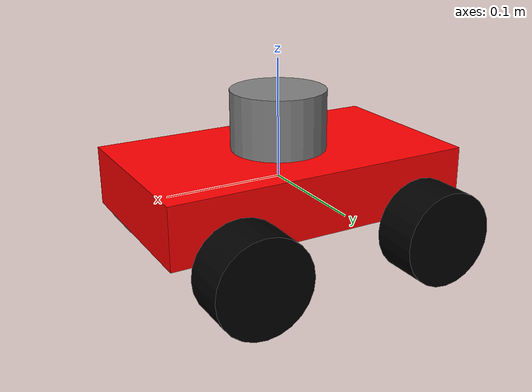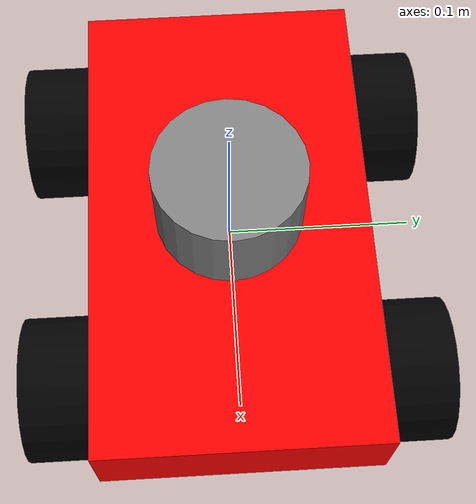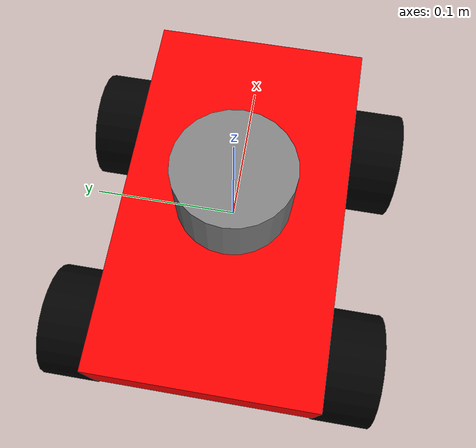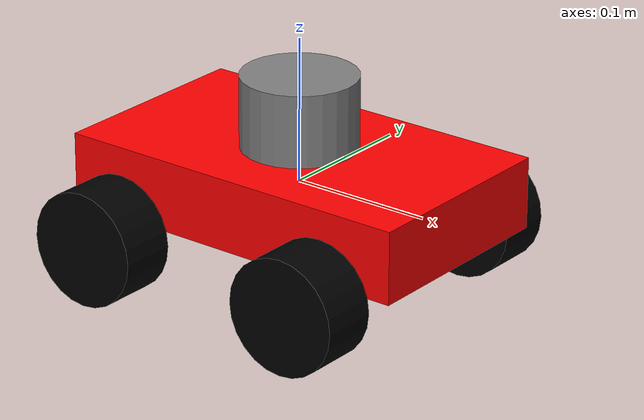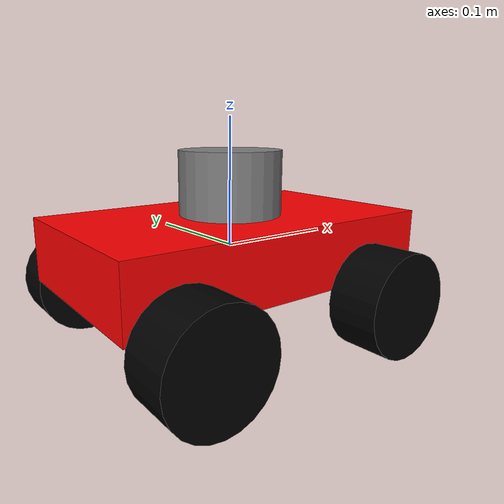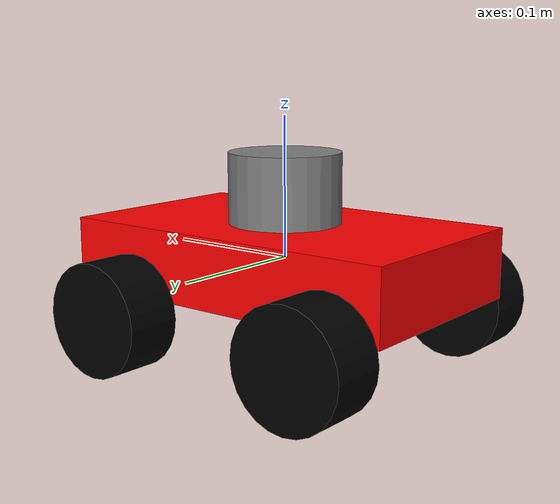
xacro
<?xml version="1.0"?>
<robot name="robot" xmlns:xacro="http://ros.org/wiki/xacro">

    <!-- COLORS -->
    <material name="red">
        <color rgba="1.0 0.0 0.0 1.0"/>
    </material>

    <material name="black">
        <color rgba="0.0 0.0 0.0 1.0"/>
    </material>

    <material name="gray">
        <color rgba="0.5 0.5 0.5 1.0"/>
    </material>

    <!-- BODY -->
	<link name="base_link">
		<visual>
            <geometry>
                <box size="0.26 0.152 0.05"/>
            </geometry>
            <material name="red"/>
		</visual>
		<collision>
            <geometry>
                <box size="0.26 0.152 0.05"/>
            </geometry>
		</collision>
	</link>

    <link name="base_footprint"/>

    <joint name="base_footprint_joint" type="fixed">
        <parent link="base_footprint"/>
        <child link="base_link"/>
        <origin xyz="0 0 0.0" rpy="0 0 0"/>

    </joint>
    <!-- WHEELS -->

    <!-- Motor 1 -->
    <joint name="motor1" type="continuous">
		<parent link="base_link"/>
		<child link="wheel1"/>
		<axis xyz="0 0 -1"/>
		<limit effort="10" velocity="20"/>
		<origin xyz="0.075 0.096 -0.035" rpy="1.57 0 0"/>
	</joint>
	<link name="wheel1">
		<visual>
		    <origin xyz="0 0 0" rpy="0 0 0"/>
            <geometry>
                <cylinder radius="0.04" length="0.04"/>
            </geometry>
            <material name="black"/>
		</visual>
		<collision>
            <origin xyz="0 0 0" rpy="0 0 0"/>
            <geometry>
                <cylinder radius="0.04" length="0.04"/>
            </geometry>
		</collision>
	</link>

    <!-- Motor 2 -->
	<joint name="motor2" type="continuous">
		<parent link="base_link"/>
		<child link="wheel2"/>
		<axis xyz="0 0 -1"/>
		<limit effort="10" velocity="20"/>
		<origin xyz="0.075 -0.096 -0.035" rpy="1.57 0 0"/>
	</joint>
	<link name="wheel2">
		<visual>
            <origin xyz="0 0 0" rpy="0 0 0"/>
            <geometry>
                <cylinder radius="0.04" length="0.04"/>
            </geometry>
            <material name="black"/>
		</visual>
		<collision>
            <origin xyz="0 0 0" rpy="0 0 0"/>
            <geometry>
                <cylinder radius="0.04" length="0.04"/>
            </geometry>
		</collision>
	</link>

    <!-- Motor 3 -->
	<joint name="motor3" type="continuous">
		<parent link="base_link"/>
		<child link="wheel3"/>
		<axis xyz="0 0 -1"/>
		<limit effort="10" velocity="20"/>
		<origin xyz="-0.09 0.096 -0.035" rpy="1.57 0 0"/>
	</joint>
	<link name="wheel3">
		<visual>
            <origin xyz="0 0 0" rpy="0 0 0"/>
            <geometry>
                <cylinder radius="0.04" length="0.04"/>
            </geometry>
            <material name="black"/>
		</visual>
		<collision>
            <origin xyz="0 0 0" rpy="0 0 0"/>
            <geometry>
                <cylinder radius="0.04" length="0.04"/>
            </geometry>
		</collision>
	</link>

    <!-- Motor 4 -->
    <joint name="motor4" type="continuous">
		<parent link="base_link"/>
		<child link="wheel4"/>
		<axis xyz="0 0 -1"/>
		<limit effort="10" velocity="20"/>
		<origin xyz="-0.09 -0.096 -0.035" rpy="1.57 0 0"/>
	</joint>
    <link name="wheel4">
		<visual>
            <origin xyz="0 0 0" rpy="0 0 0"/>
            <geometry>
                <cylinder radius="0.04" length="0.04"/>
            </geometry>
            <material name="black"/>
		</visual>
		<collision>
            <origin xyz="0 0 0" rpy="0 0 0"/>
            <geometry>
                <cylinder radius="0.04" length="0.04"/>
            </geometry>
		</collision>
	</link>

    <!-- SENSORS  ${3.14151693} 0 ${-3.14151693/2}-->

    <!-- Lidar -->
	<joint name="base_link_lidar_joint" type="fixed">
		<parent link="base_link"/>
		<child link="laser"/>
		<origin xyz="0 0 0.05" rpy="0 0 ${3.14151693}"/>
	</joint>
	<link name="laser">
		<visual>
            <origin xyz="0 0 0" rpy="0 0 0"/>
            <geometry>
                <cylinder radius="0.04" length="0.05"/>
            </geometry>
            <material name="gray"/>
		</visual>
		<collision>
            <origin xyz="0 0 0" rpy="0 0 0"/>
            <geometry>
                <cylinder radius="0.04" length="0.05"/>
            </geometry>
		</collision>
	</link>

</robot>
